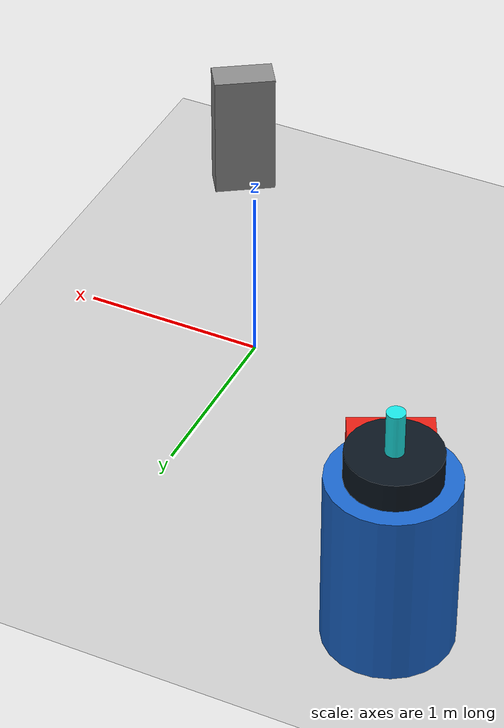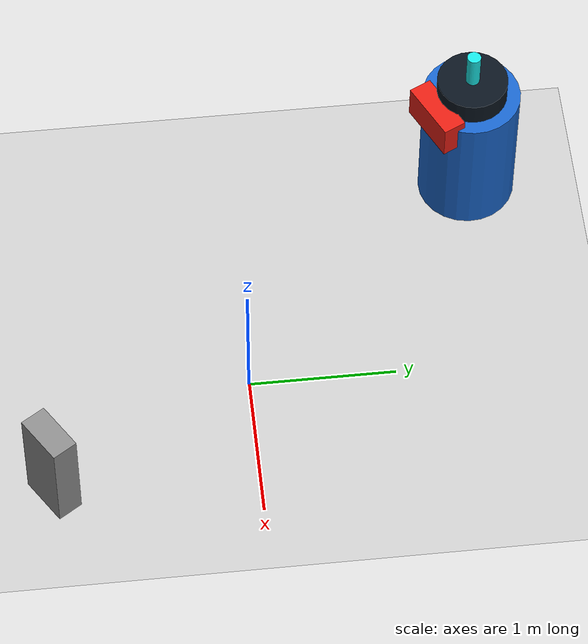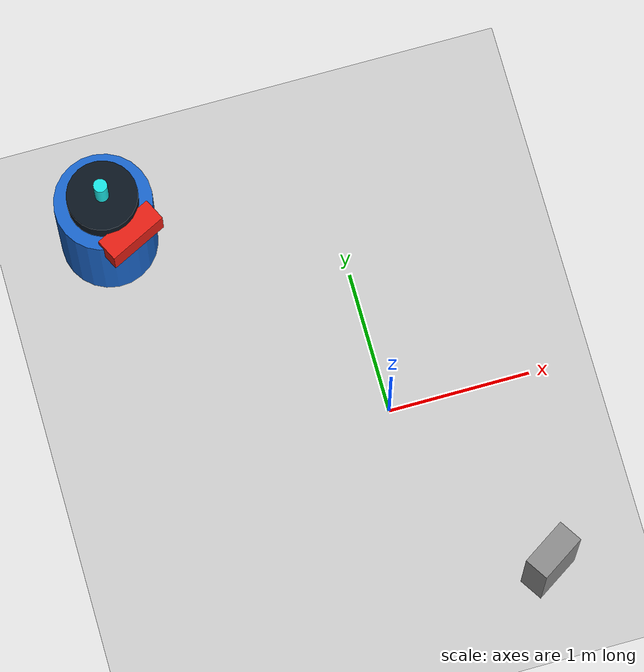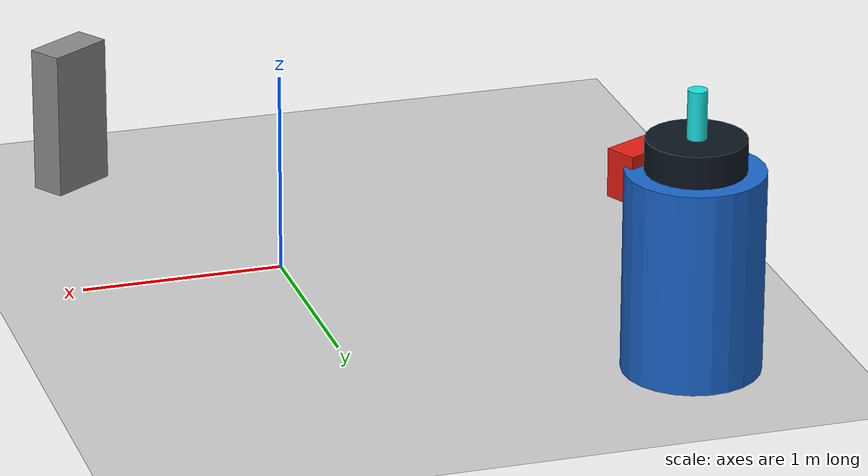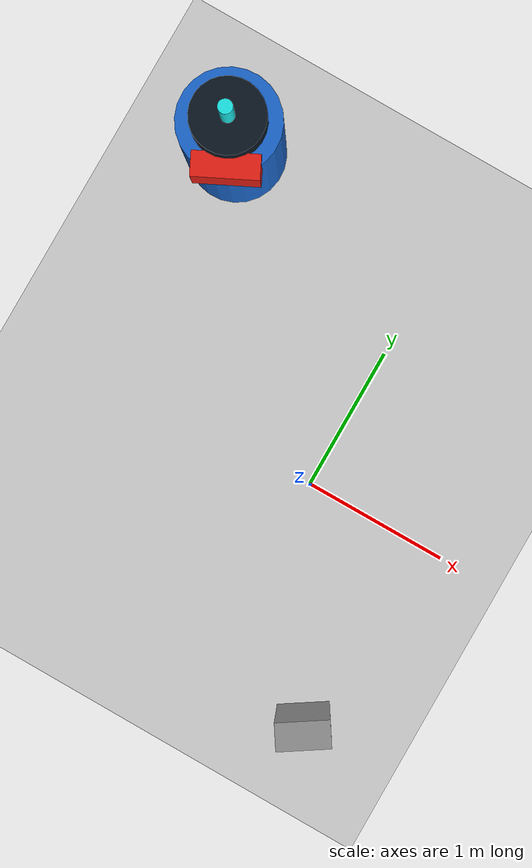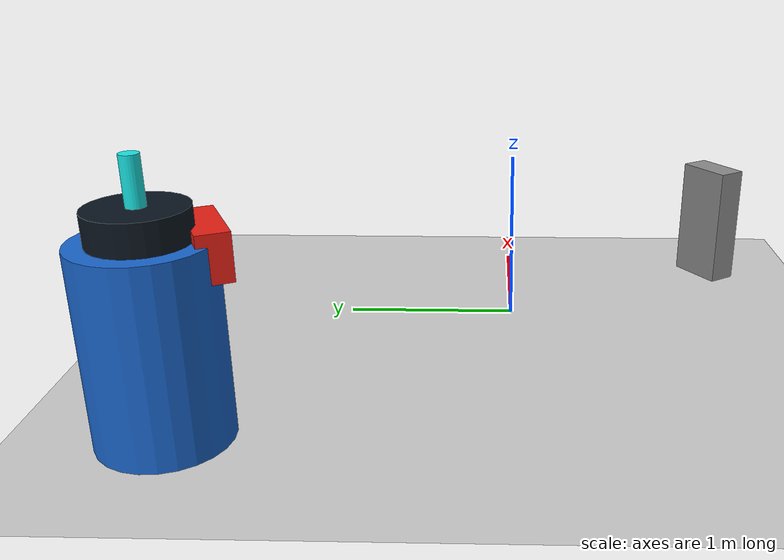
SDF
<sdf version="1.7">
 <world name="default">
  <plugin name="socnav_plugin" filename="libSocNavPlugin.so">
   <robot_name>robot</robot_name>
   <trajectory_file>/home/hunav_gz_classic_ws/SocNav3_trajectories/src6/000003915.json</trajectory_file>
   <human_slots>1</human_slots>
   <goal_angle_mesh>
    <angle_threshold>1.26473984392</angle_threshold>
    <uri>/home/hunav_gz_classic_ws/src/socnav_gazebo_reproducer/meshes/000003915_goal_angle_00.stl</uri>
   </goal_angle_mesh>
  </plugin>
  <light name="sun" type="directional">
   <pose>0 0 10 0 -0 0</pose>
   <diffuse>0.8 0.8 0.8 1</diffuse>
   <specular>0.2 0.2 0.2 1</specular>
   <attenuation>
    <range>1000</range>
    <constant>0.9</constant>
    <linear>0.01</linear>
    <quadratic>0.001</quadratic>
   </attenuation>
   <direction>-0.5 0.1 -0.9</direction>
   <spot><inner_angle>0</inner_angle><outer_angle>0</outer_angle><falloff>0</falloff></spot>
  </light>
  <model name="ground_plane">
   <static>1</static>
   <link name="link">
    <collision name="collision">
     <geometry><plane><normal>0 0 1</normal><size>100 100</size></plane></geometry>
     <surface><friction><ode><mu>100</mu><mu2>50</mu2></ode></friction></surface>
    </collision>
    <visual name="visual">
     <cast_shadows>0</cast_shadows>
     <geometry><plane><normal>0 0 1</normal><size>100 100</size></plane></geometry>
     <material>
      <script><uri>file://media/materials/scripts/kitchen.material</uri><name>Kitchen/CounterTop_H</name></script>
     </material>
    </visual>
   </link>
  </model>
  <gravity>0 0 -9.8</gravity>
  <magnetic_field>6e-06 2.3e-05 -4.2e-05</magnetic_field>
  <atmosphere type="adiabatic"/>
  <physics type="ode">
   <max_step_size>0.001</max_step_size>
   <real_time_factor>1</real_time_factor>
   <real_time_update_rate>1000</real_time_update_rate>
  </physics>
  <scene><ambient>0.4 0.4 0.4 1</ambient><background>0.7 0.7 0.7 1</background><shadows>1</shadows></scene>
  <audio><device>default</device></audio>
  <spherical_coordinates>
   <surface_model>EARTH_WGS84</surface_model>
   <latitude_deg>0</latitude_deg>
   <longitude_deg>0</longitude_deg>
   <elevation>0</elevation>
   <heading_deg>0</heading_deg>
  </spherical_coordinates>
  <model name="robot">
   <pose>-1.5348245861224297 1.682733344495307 0.5 0 0 -1.1133608237463588</pose>
   <link name="link">
    <collision name="collision">
     <geometry><cylinder><radius>0.335233044652042</radius><length>1.0</length></cylinder></geometry>
    </collision>
    <visual name="visual">
     <geometry><cylinder><radius>0.335233044652042</radius><length>1.0</length></cylinder></geometry>
     <material><ambient>0.1 0.4 0.8 1</ambient><diffuse>0.1 0.4 0.8 1</diffuse></material>
    </visual>
    <visual name="robot_top">
     <pose>0 0 0.58 0 0 0</pose>
     <geometry><cylinder><radius>0.24136779214947024</radius><length>0.16</length></cylinder></geometry>
     <material><ambient>0.04 0.08 0.12 1</ambient><diffuse>0.04 0.08 0.12 1</diffuse></material>
    </visual>
    <visual name="robot_front">
     <pose>0.28159575750771526 0 0.44 0 0 0</pose>
     <geometry><box><size>0.16091186143298017 0.4290982971546138 0.24</size></box></geometry>
     <material><ambient>0.9 0.12 0.08 1</ambient><diffuse>0.9 0.12 0.08 1</diffuse></material>
    </visual>
    <visual name="robot_sensor">
     <pose>0 0 0.78 0 0 0</pose>
     <geometry><cylinder><radius>0.046932626251285886</radius><length>0.24</length></cylinder></geometry>
     <material><ambient>0.1 0.9 0.9 1</ambient><diffuse>0.1 0.9 0.9 1</diffuse></material>
    </visual>
   </link>
  </model>
  <model name="static_object_0">
   <static>true</static>
   <pose>0.7347942616771509 -1.3642566990855427 0.375 0 0 0.5766894044144544</pose>
   <link name="link">
    <collision name="collision"><geometry><box><size>0.35 0.18 0.75</size></box></geometry></collision>
    <visual name="visual">
     <geometry><box><size>0.35 0.18 0.75</size></box></geometry>
     <material><ambient>0.55 0.55 0.55 1</ambient><diffuse>0.55 0.55 0.55 1</diffuse></material>
    </visual>
   </link>
  </model>
  <model name="simple_world_test"><static>1</static></model>
 </world>
</sdf>
